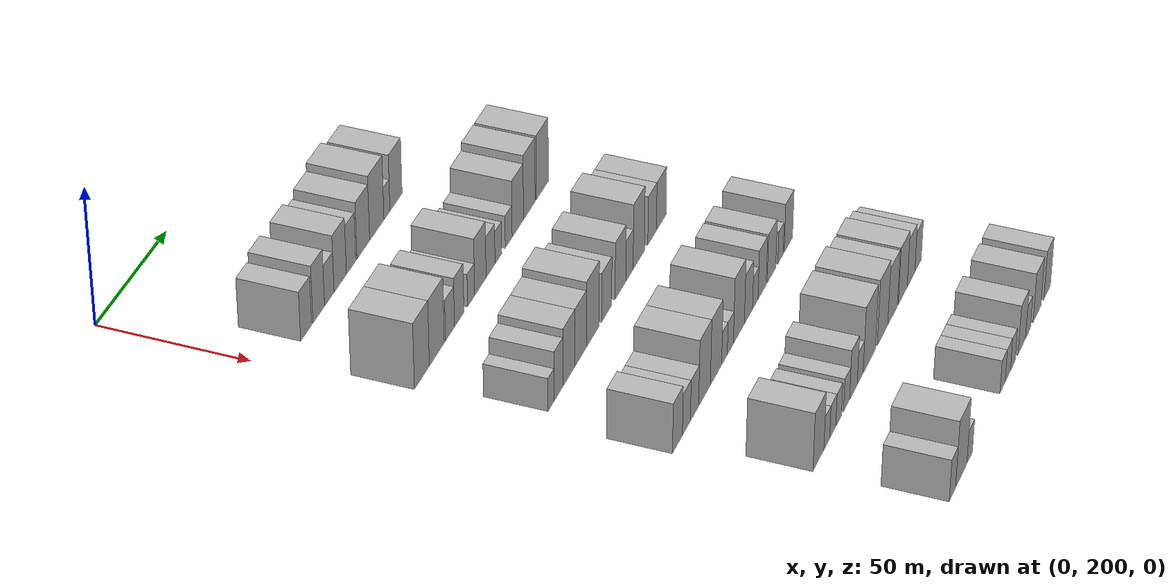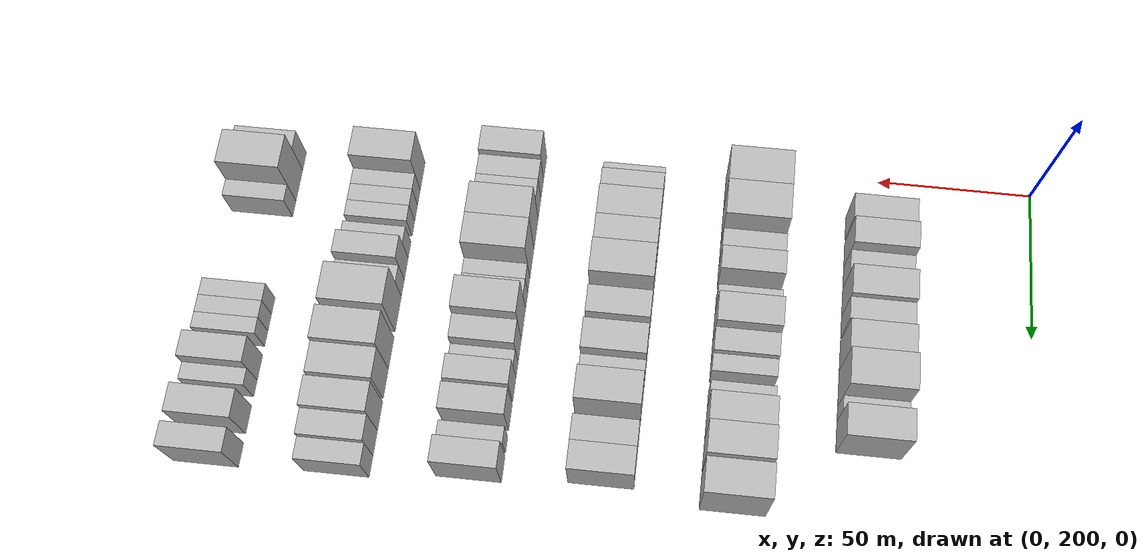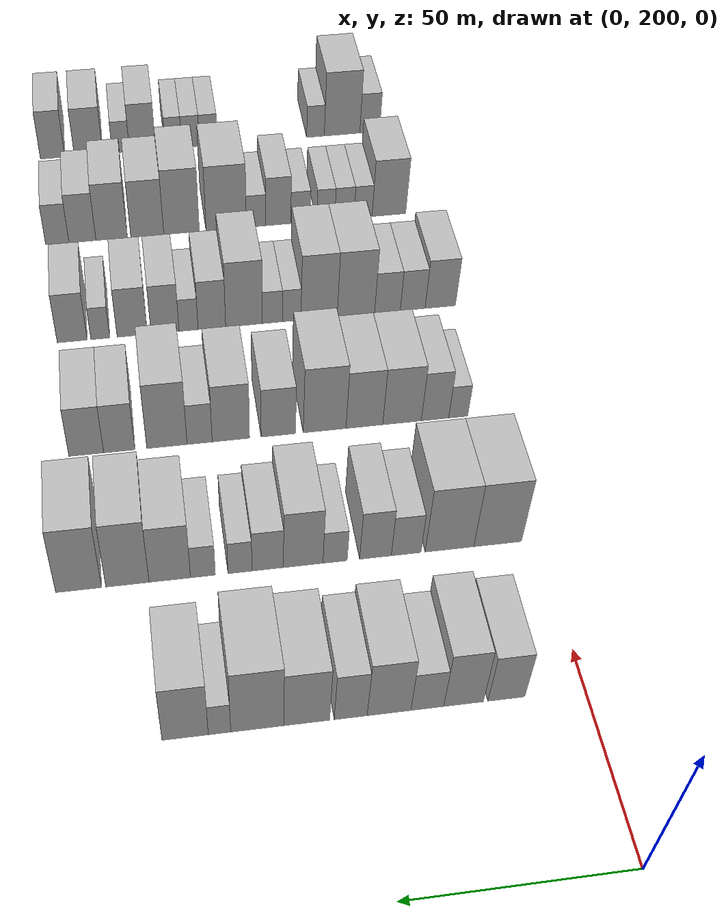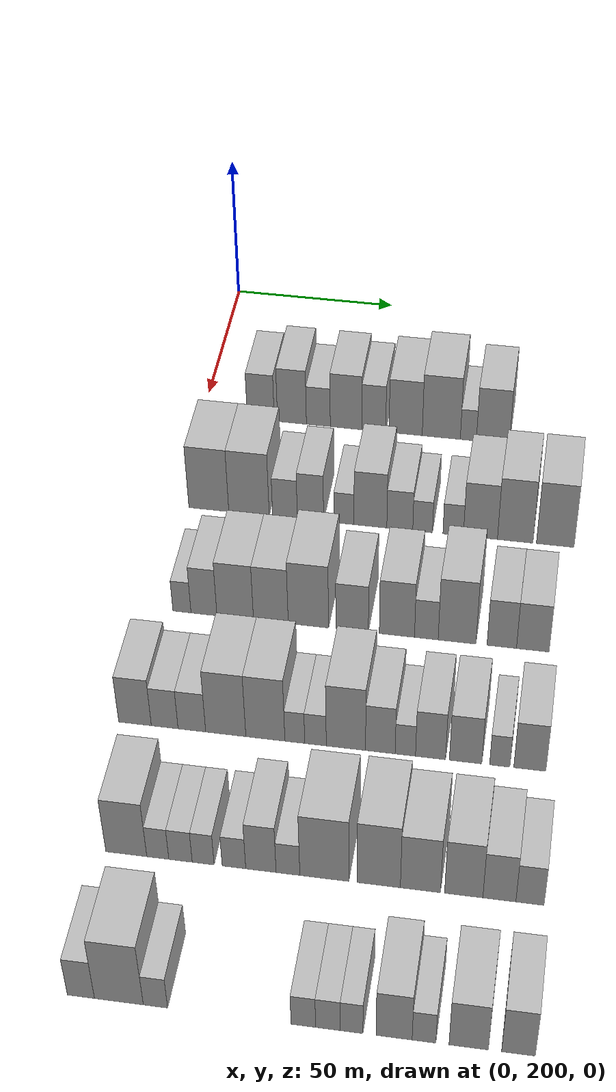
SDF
<sdf version="1.6">
 <world name="default">
  <model name="building_92">
   <static>1</static>
   <pose>50.0000 217.8585 0 0.000000 0.000000 0.000000</pose>
   <link name="link">
    <pose>0 0 9.00 0 0 0</pose>
    <collision name="collision"><geometry><box><size>20.0000 8.2677 18.0000</size></box></geometry></collision>
    <visual name="visual">
     <cast_shadows>0</cast_shadows>
     <geometry><box><size>20.0000 8.2677 18.0000</size></box></geometry>
     <material>
      <script>
       <uri>model://HANNAS_wall/materials/scripts</uri>
       <uri>model://HANNAS_wall/materials/textures</uri>
       <name>vrc/HANNAS_wall</name>
      </script>
     </material>
    </visual>
   </link>
  </model>
  <model name="building_93">
   <static>1</static>
   <pose>50.0000 227.4027 0 0.000000 0.000000 0.000000</pose>
   <link name="link">
    <pose>0 0 10.50 0 0 0</pose>
    <collision name="collision"><geometry><box><size>20.0000 8.8206 21.0000</size></box></geometry></collision>
    <visual name="visual">
     <cast_shadows>0</cast_shadows>
     <geometry><box><size>20.0000 8.8206 21.0000</size></box></geometry>
     <material>
      <script>
       <uri>model://HANNAS_wall/materials/scripts</uri>
       <uri>model://HANNAS_wall/materials/textures</uri>
       <name>vrc/HANNAS_wall</name>
      </script>
     </material>
    </visual>
   </link>
  </model>
  <model name="building_94">
   <static>1</static>
   <pose>50.0000 235.4547 0 0.000000 0.000000 0.000000</pose>
   <link name="link">
    <pose>0 0 7.50 0 0 0</pose>
    <collision name="collision"><geometry><box><size>20.0000 7.2835 15.0000</size></box></geometry></collision>
    <visual name="visual">
     <cast_shadows>0</cast_shadows>
     <geometry><box><size>20.0000 7.2835 15.0000</size></box></geometry>
     <material>
      <script>
       <uri>model://HANNAS_wall/materials/scripts</uri>
       <uri>model://HANNAS_wall/materials/textures</uri>
       <name>vrc/HANNAS_wall</name>
      </script>
     </material>
    </visual>
   </link>
  </model>
  <model name="building_95">
   <static>1</static>
   <pose>50.0000 243.9097 0 0.000000 0.000000 0.000000</pose>
   <link name="link">
    <pose>0 0 10.50 0 0 0</pose>
    <collision name="collision"><geometry><box><size>20.0000 9.6265 21.0000</size></box></geometry></collision>
    <visual name="visual">
     <cast_shadows>0</cast_shadows>
     <geometry><box><size>20.0000 9.6265 21.0000</size></box></geometry>
     <material>
      <script>
       <uri>model://HANNAS_wall/materials/scripts</uri>
       <uri>model://HANNAS_wall/materials/textures</uri>
       <name>vrc/HANNAS_wall</name>
      </script>
     </material>
    </visual>
   </link>
  </model>
  <model name="building_96">
   <static>1</static>
   <pose>50.0000 252.3314 0 0.000000 0.000000 0.000000</pose>
   <link name="link">
    <pose>0 0 9.00 0 0 0</pose>
    <collision name="collision"><geometry><box><size>20.0000 7.2169 18.0000</size></box></geometry></collision>
    <visual name="visual">
     <cast_shadows>0</cast_shadows>
     <geometry><box><size>20.0000 7.2169 18.0000</size></box></geometry>
     <material>
      <script>
       <uri>model://HANNAS_wall/materials/scripts</uri>
       <uri>model://HANNAS_wall/materials/textures</uri>
       <name>vrc/HANNAS_wall</name>
      </script>
     </material>
    </visual>
   </link>
  </model>
  <model name="building_97">
   <static>1</static>
   <pose>50.0000 261.9530 0 0.000000 0.000000 0.000000</pose>
   <link name="link">
    <pose>0 0 10.50 0 0 0</pose>
    <collision name="collision"><geometry><box><size>20.0000 10.0264 21.0000</size></box></geometry></collision>
    <visual name="visual">
     <cast_shadows>0</cast_shadows>
     <geometry><box><size>20.0000 10.0264 21.0000</size></box></geometry>
     <material>
      <script>
       <uri>model://HANNAS_wall/materials/scripts</uri>
       <uri>model://HANNAS_wall/materials/textures</uri>
       <name>vrc/HANNAS_wall</name>
      </script>
     </material>
    </visual>
   </link>
  </model>
  <model name="building_98">
   <static>1</static>
   <pose>50.0000 272.6972 0 0.000000 0.000000 0.000000</pose>
   <link name="link">
    <pose>0 0 12.00 0 0 0</pose>
    <collision name="collision"><geometry><box><size>20.0000 11.4619 24.0000</size></box></geometry></collision>
    <visual name="visual">
     <cast_shadows>0</cast_shadows>
     <geometry><box><size>20.0000 11.4619 24.0000</size></box></geometry>
     <material>
      <script>
       <uri>model://HANNAS_wall/materials/scripts</uri>
       <uri>model://HANNAS_wall/materials/textures</uri>
       <name>vrc/HANNAS_wall</name>
      </script>
     </material>
    </visual>
   </link>
  </model>
  <model name="building_99">
   <static>1</static>
   <pose>50.0000 280.8445 0 0.000000 0.000000 0.000000</pose>
   <link name="link">
    <pose>0 0 6.00 0 0 0</pose>
    <collision name="collision"><geometry><box><size>20.0000 4.8327 12.0000</size></box></geometry></collision>
    <visual name="visual">
     <cast_shadows>0</cast_shadows>
     <geometry><box><size>20.0000 4.8327 12.0000</size></box></geometry>
     <material>
      <script>
       <uri>model://HANNAS_wall/materials/scripts</uri>
       <uri>model://HANNAS_wall/materials/textures</uri>
       <name>vrc/HANNAS_wall</name>
      </script>
     </material>
    </visual>
   </link>
  </model>
  <model name="building_100">
   <static>1</static>
   <pose>50.0000 288.2170 0 0.000000 0.000000 0.000000</pose>
   <link name="link">
    <pose>0 0 10.50 0 0 0</pose>
    <collision name="collision"><geometry><box><size>20.0000 9.9124 21.0000</size></box></geometry></collision>
    <visual name="visual">
     <cast_shadows>0</cast_shadows>
     <geometry><box><size>20.0000 9.9124 21.0000</size></box></geometry>
     <material>
      <script>
       <uri>model://HANNAS_wall/materials/scripts</uri>
       <uri>model://HANNAS_wall/materials/textures</uri>
       <name>vrc/HANNAS_wall</name>
      </script>
     </material>
    </visual>
   </link>
  </model>
  <model name="building_221">
   <static>1</static>
   <pose>90.0000 209.8350 0 0.000000 0.000000 0.000000</pose>
   <link name="link">
    <pose>0 0 12.00 0 0 0</pose>
    <collision name="collision"><geometry><box><size>20.0000 11.6819 24.0000</size></box></geometry></collision>
    <visual name="visual">
     <cast_shadows>0</cast_shadows>
     <geometry><box><size>20.0000 11.6819 24.0000</size></box></geometry>
     <material>
      <script>
       <uri>model://HANNAS_wall/materials/scripts</uri>
       <uri>model://HANNAS_wall/materials/textures</uri>
       <name>vrc/HANNAS_wall</name>
      </script>
     </material>
    </visual>
   </link>
  </model>
  <model name="building_222">
   <static>1</static>
   <pose>90.0000 221.5888 0 0.000000 0.000000 0.000000</pose>
   <link name="link">
    <pose>0 0 12.00 0 0 0</pose>
    <collision name="collision"><geometry><box><size>20.0000 11.8256 24.0000</size></box></geometry></collision>
    <visual name="visual">
     <cast_shadows>0</cast_shadows>
     <geometry><box><size>20.0000 11.8256 24.0000</size></box></geometry>
     <material>
      <script>
       <uri>model://HANNAS_wall/materials/scripts</uri>
       <uri>model://HANNAS_wall/materials/textures</uri>
       <name>vrc/HANNAS_wall</name>
      </script>
     </material>
    </visual>
   </link>
  </model>
  <model name="building_223">
   <static>1</static>
   <pose>90.0000 232.0956 0 0.000000 0.000000 0.000000</pose>
   <link name="link">
    <pose>0 0 7.50 0 0 0</pose>
    <collision name="collision"><geometry><box><size>20.0000 7.1879 15.0000</size></box></geometry></collision>
    <visual name="visual">
     <cast_shadows>0</cast_shadows>
     <geometry><box><size>20.0000 7.1879 15.0000</size></box></geometry>
     <material>
      <script>
       <uri>model://HANNAS_wall/materials/scripts</uri>
       <uri>model://HANNAS_wall/materials/textures</uri>
       <name>vrc/HANNAS_wall</name>
      </script>
     </material>
    </visual>
   </link>
  </model>
  <model name="building_224">
   <static>1</static>
   <pose>90.0000 239.5042 0 0.000000 0.000000 0.000000</pose>
   <link name="link">
    <pose>0 0 9.00 0 0 0</pose>
    <collision name="collision"><geometry><box><size>20.0000 7.6293 18.0000</size></box></geometry></collision>
    <visual name="visual">
     <cast_shadows>0</cast_shadows>
     <geometry><box><size>20.0000 7.6293 18.0000</size></box></geometry>
     <material>
      <script>
       <uri>model://HANNAS_wall/materials/scripts</uri>
       <uri>model://HANNAS_wall/materials/textures</uri>
       <name>vrc/HANNAS_wall</name>
      </script>
     </material>
    </visual>
   </link>
  </model>
  <model name="building_225">
   <static>1</static>
   <pose>90.0000 249.2200 0 0.000000 0.000000 0.000000</pose>
   <link name="link">
    <pose>0 0 6.00 0 0 0</pose>
    <collision name="collision"><geometry><box><size>20.0000 5.8024 12.0000</size></box></geometry></collision>
    <visual name="visual">
     <cast_shadows>0</cast_shadows>
     <geometry><box><size>20.0000 5.8024 12.0000</size></box></geometry>
     <material>
      <script>
       <uri>model://HANNAS_wall/materials/scripts</uri>
       <uri>model://HANNAS_wall/materials/textures</uri>
       <name>vrc/HANNAS_wall</name>
      </script>
     </material>
    </visual>
   </link>
  </model>
  <model name="building_226">
   <static>1</static>
   <pose>90.0000 256.8421 0 0.000000 0.000000 0.000000</pose>
   <link name="link">
    <pose>0 0 10.50 0 0 0</pose>
    <collision name="collision"><geometry><box><size>20.0000 9.4418 21.0000</size></box></geometry></collision>
    <visual name="visual">
     <cast_shadows>0</cast_shadows>
     <geometry><box><size>20.0000 9.4418 21.0000</size></box></geometry>
     <material>
      <script>
       <uri>model://HANNAS_wall/materials/scripts</uri>
       <uri>model://HANNAS_wall/materials/textures</uri>
       <name>vrc/HANNAS_wall</name>
      </script>
     </material>
    </visual>
   </link>
  </model>
  <model name="building_227">
   <static>1</static>
   <pose>90.0000 265.2929 0 0.000000 0.000000 0.000000</pose>
   <link name="link">
    <pose>0 0 7.50 0 0 0</pose>
    <collision name="collision"><geometry><box><size>20.0000 7.4597 15.0000</size></box></geometry></collision>
    <visual name="visual">
     <cast_shadows>0</cast_shadows>
     <geometry><box><size>20.0000 7.4597 15.0000</size></box></geometry>
     <material>
      <script>
       <uri>model://HANNAS_wall/materials/scripts</uri>
       <uri>model://HANNAS_wall/materials/textures</uri>
       <name>vrc/HANNAS_wall</name>
      </script>
     </material>
    </visual>
   </link>
  </model>
  <model name="building_228">
   <static>1</static>
   <pose>90.0000 271.8470 0 0.000000 0.000000 0.000000</pose>
   <link name="link">
    <pose>0 0 6.00 0 0 0</pose>
    <collision name="collision"><geometry><box><size>20.0000 5.6486 12.0000</size></box></geometry></collision>
    <visual name="visual">
     <cast_shadows>0</cast_shadows>
     <geometry><box><size>20.0000 5.6486 12.0000</size></box></geometry>
     <material>
      <script>
       <uri>model://HANNAS_wall/materials/scripts</uri>
       <uri>model://HANNAS_wall/materials/textures</uri>
       <name>vrc/HANNAS_wall</name>
      </script>
     </material>
    </visual>
   </link>
  </model>
  <model name="building_229">
   <static>1</static>
   <pose>90.0000 280.5936 0 0.000000 0.000000 0.000000</pose>
   <link name="link">
    <pose>0 0 6.00 0 0 0</pose>
    <collision name="collision"><geometry><box><size>20.0000 5.8447 12.0000</size></box></geometry></collision>
    <visual name="visual">
     <cast_shadows>0</cast_shadows>
     <geometry><box><size>20.0000 5.8447 12.0000</size></box></geometry>
     <material>
      <script>
       <uri>model://HANNAS_wall/materials/scripts</uri>
       <uri>model://HANNAS_wall/materials/textures</uri>
       <name>vrc/HANNAS_wall</name>
      </script>
     </material>
    </visual>
   </link>
  </model>
  <model name="building_230">
   <static>1</static>
   <pose>90.0000 288.3706 0 0.000000 0.000000 0.000000</pose>
   <link name="link">
    <pose>0 0 10.50 0 0 0</pose>
    <collision name="collision"><geometry><box><size>20.0000 9.7092 21.0000</size></box></geometry></collision>
    <visual name="visual">
     <cast_shadows>0</cast_shadows>
     <geometry><box><size>20.0000 9.7092 21.0000</size></box></geometry>
     <material>
      <script>
       <uri>model://HANNAS_wall/materials/scripts</uri>
       <uri>model://HANNAS_wall/materials/textures</uri>
       <name>vrc/HANNAS_wall</name>
      </script>
     </material>
    </visual>
   </link>
  </model>
  <model name="building_231">
   <static>1</static>
   <pose>90.0000 298.2600 0 0.000000 0.000000 0.000000</pose>
   <link name="link">
    <pose>0 0 12.00 0 0 0</pose>
    <collision name="collision"><geometry><box><size>20.0000 10.0698 24.0000</size></box></geometry></collision>
    <visual name="visual">
     <cast_shadows>0</cast_shadows>
     <geometry><box><size>20.0000 10.0698 24.0000</size></box></geometry>
     <material>
      <script>
       <uri>model://HANNAS_wall/materials/scripts</uri>
       <uri>model://HANNAS_wall/materials/textures</uri>
       <name>vrc/HANNAS_wall</name>
      </script>
     </material>
    </visual>
   </link>
  </model>
  <model name="building_232">
   <static>1</static>
   <pose>90.0000 309.6060 0 0.000000 0.000000 0.000000</pose>
   <link name="link">
    <pose>0 0 12.00 0 0 0</pose>
    <collision name="collision"><geometry><box><size>20.0000 10.6221 24.0000</size></box></geometry></collision>
    <visual name="visual">
     <cast_shadows>0</cast_shadows>
     <geometry><box><size>20.0000 10.6221 24.0000</size></box></geometry>
     <material>
      <script>
       <uri>model://HANNAS_wall/materials/scripts</uri>
       <uri>model://HANNAS_wall/materials/textures</uri>
       <name>vrc/HANNAS_wall</name>
      </script>
     </material>
    </visual>
   </link>
  </model>
  <model name="building_363">
   <static>1</static>
   <pose>130.0000 210.3344 0 0.000000 0.000000 0.000000</pose>
   <link name="link">
    <pose>0 0 6.00 0 0 0</pose>
    <collision name="collision"><geometry><box><size>20.0000 5.0434 12.0000</size></box></geometry></collision>
    <visual name="visual">
     <cast_shadows>0</cast_shadows>
     <geometry><box><size>20.0000 5.0434 12.0000</size></box></geometry>
     <material>
      <script>
       <uri>model://HANNAS_wall/materials/scripts</uri>
       <uri>model://HANNAS_wall/materials/textures</uri>
       <name>vrc/HANNAS_wall</name>
      </script>
     </material>
    </visual>
   </link>
  </model>
  <model name="building_364">
   <static>1</static>
   <pose>130.0000 216.4618 0 0.000000 0.000000 0.000000</pose>
   <link name="link">
    <pose>0 0 9.00 0 0 0</pose>
    <collision name="collision"><geometry><box><size>20.0000 7.2114 18.0000</size></box></geometry></collision>
    <visual name="visual">
     <cast_shadows>0</cast_shadows>
     <geometry><box><size>20.0000 7.2114 18.0000</size></box></geometry>
     <material>
      <script>
       <uri>model://HANNAS_wall/materials/scripts</uri>
       <uri>model://HANNAS_wall/materials/textures</uri>
       <name>vrc/HANNAS_wall</name>
      </script>
     </material>
    </visual>
   </link>
  </model>
  <model name="building_365">
   <static>1</static>
   <pose>130.0000 225.1356 0 0.000000 0.000000 0.000000</pose>
   <link name="link">
    <pose>0 0 10.50 0 0 0</pose>
    <collision name="collision"><geometry><box><size>20.0000 10.1361 21.0000</size></box></geometry></collision>
    <visual name="visual">
     <cast_shadows>0</cast_shadows>
     <geometry><box><size>20.0000 10.1361 21.0000</size></box></geometry>
     <material>
      <script>
       <uri>model://HANNAS_wall/materials/scripts</uri>
       <uri>model://HANNAS_wall/materials/textures</uri>
       <name>vrc/HANNAS_wall</name>
      </script>
     </material>
    </visual>
   </link>
  </model>
  <model name="building_366">
   <static>1</static>
   <pose>130.0000 235.0115 0 0.000000 0.000000 0.000000</pose>
   <link name="link">
    <pose>0 0 10.50 0 0 0</pose>
    <collision name="collision"><geometry><box><size>20.0000 9.6157 21.0000</size></box></geometry></collision>
    <visual name="visual">
     <cast_shadows>0</cast_shadows>
     <geometry><box><size>20.0000 9.6157 21.0000</size></box></geometry>
     <material>
      <script>
       <uri>model://HANNAS_wall/materials/scripts</uri>
       <uri>model://HANNAS_wall/materials/textures</uri>
       <name>vrc/HANNAS_wall</name>
      </script>
     </material>
    </visual>
   </link>
  </model>
  <model name="building_367">
   <static>1</static>
   <pose>130.0000 245.3782 0 0.000000 0.000000 0.000000</pose>
   <link name="link">
    <pose>0 0 12.00 0 0 0</pose>
    <collision name="collision"><geometry><box><size>20.0000 11.1177 24.0000</size></box></geometry></collision>
    <visual name="visual">
     <cast_shadows>0</cast_shadows>
     <geometry><box><size>20.0000 11.1177 24.0000</size></box></geometry>
     <material>
      <script>
       <uri>model://HANNAS_wall/materials/scripts</uri>
       <uri>model://HANNAS_wall/materials/textures</uri>
       <name>vrc/HANNAS_wall</name>
      </script>
     </material>
    </visual>
   </link>
  </model>
  <model name="building_368">
   <static>1</static>
   <pose>130.0000 257.3779 0 0.000000 0.000000 0.000000</pose>
   <link name="link">
    <pose>0 0 9.00 0 0 0</pose>
    <collision name="collision"><geometry><box><size>20.0000 8.8816 18.0000</size></box></geometry></collision>
    <visual name="visual">
     <cast_shadows>0</cast_shadows>
     <geometry><box><size>20.0000 8.8816 18.0000</size></box></geometry>
     <material>
      <script>
       <uri>model://HANNAS_wall/materials/scripts</uri>
       <uri>model://HANNAS_wall/materials/textures</uri>
       <name>vrc/HANNAS_wall</name>
      </script>
     </material>
    </visual>
   </link>
  </model>
  <model name="building_369">
   <static>1</static>
   <pose>130.0000 269.6115 0 0.000000 0.000000 0.000000</pose>
   <link name="link">
    <pose>0 0 10.50 0 0 0</pose>
    <collision name="collision"><geometry><box><size>20.0000 9.5856 21.0000</size></box></geometry></collision>
    <visual name="visual">
     <cast_shadows>0</cast_shadows>
     <geometry><box><size>20.0000 9.5856 21.0000</size></box></geometry>
     <material>
      <script>
       <uri>model://HANNAS_wall/materials/scripts</uri>
       <uri>model://HANNAS_wall/materials/textures</uri>
       <name>vrc/HANNAS_wall</name>
      </script>
     </material>
    </visual>
   </link>
  </model>
  <model name="building_370">
   <static>1</static>
   <pose>130.0000 277.6211 0 0.000000 0.000000 0.000000</pose>
   <link name="link">
    <pose>0 0 7.50 0 0 0</pose>
    <collision name="collision"><geometry><box><size>20.0000 6.4337 15.0000</size></box></geometry></collision>
    <visual name="visual">
     <cast_shadows>0</cast_shadows>
     <geometry><box><size>20.0000 6.4337 15.0000</size></box></geometry>
     <material>
      <script>
       <uri>model://HANNAS_wall/materials/scripts</uri>
       <uri>model://HANNAS_wall/materials/textures</uri>
       <name>vrc/HANNAS_wall</name>
      </script>
     </material>
    </visual>
   </link>
  </model>
  <model name="building_371">
   <static>1</static>
   <pose>130.0000 285.9586 0 0.000000 0.000000 0.000000</pose>
   <link name="link">
    <pose>0 0 12.00 0 0 0</pose>
    <collision name="collision"><geometry><box><size>20.0000 10.2414 24.0000</size></box></geometry></collision>
    <visual name="visual">
     <cast_shadows>0</cast_shadows>
     <geometry><box><size>20.0000 10.2414 24.0000</size></box></geometry>
     <material>
      <script>
       <uri>model://HANNAS_wall/materials/scripts</uri>
       <uri>model://HANNAS_wall/materials/textures</uri>
       <name>vrc/HANNAS_wall</name>
      </script>
     </material>
    </visual>
   </link>
  </model>
  <model name="building_372">
   <static>1</static>
   <pose>130.0000 298.0460 0 0.000000 0.000000 0.000000</pose>
   <link name="link">
    <pose>0 0 9.00 0 0 0</pose>
    <collision name="collision"><geometry><box><size>20.0000 7.9334 18.0000</size></box></geometry></collision>
    <visual name="visual">
     <cast_shadows>0</cast_shadows>
     <geometry><box><size>20.0000 7.9334 18.0000</size></box></geometry>
     <material>
      <script>
       <uri>model://HANNAS_wall/materials/scripts</uri>
       <uri>model://HANNAS_wall/materials/textures</uri>
       <name>vrc/HANNAS_wall</name>
      </script>
     </material>
    </visual>
   </link>
  </model>
  <model name="building_373">
   <static>1</static>
   <pose>130.0000 306.3938 0 0.000000 0.000000 0.000000</pose>
   <link name="link">
    <pose>0 0 9.00 0 0 0</pose>
    <collision name="collision"><geometry><box><size>20.0000 8.7620 18.0000</size></box></geometry></collision>
    <visual name="visual">
     <cast_shadows>0</cast_shadows>
     <geometry><box><size>20.0000 8.7620 18.0000</size></box></geometry>
     <material>
      <script>
       <uri>model://HANNAS_wall/materials/scripts</uri>
       <uri>model://HANNAS_wall/materials/textures</uri>
       <name>vrc/HANNAS_wall</name>
      </script>
     </material>
    </visual>
   </link>
  </model>
  <model name="building_499">
   <static>1</static>
   <pose>170.0000 206.3096 0 0.000000 0.000000 0.000000</pose>
   <link name="link">
    <pose>0 0 9.00 0 0 0</pose>
    <collision name="collision"><geometry><box><size>20.0000 8.6467 18.0000</size></box></geometry></collision>
    <visual name="visual">
     <cast_shadows>0</cast_shadows>
     <geometry><box><size>20.0000 8.6467 18.0000</size></box></geometry>
     <material>
      <script>
       <uri>model://HANNAS_wall/materials/scripts</uri>
       <uri>model://HANNAS_wall/materials/textures</uri>
       <name>vrc/HANNAS_wall</name>
      </script>
     </material>
    </visual>
   </link>
  </model>
  <model name="building_500">
   <static>1</static>
   <pose>170.0000 214.1640 0 0.000000 0.000000 0.000000</pose>
   <link name="link">
    <pose>0 0 7.50 0 0 0</pose>
    <collision name="collision"><geometry><box><size>20.0000 7.0620 15.0000</size></box></geometry></collision>
    <visual name="visual">
     <cast_shadows>0</cast_shadows>
     <geometry><box><size>20.0000 7.0620 15.0000</size></box></geometry>
     <material>
      <script>
       <uri>model://HANNAS_wall/materials/scripts</uri>
       <uri>model://HANNAS_wall/materials/textures</uri>
       <name>vrc/HANNAS_wall</name>
      </script>
     </material>
    </visual>
   </link>
  </model>
  <model name="building_501">
   <static>1</static>
   <pose>170.0000 221.3366 0 0.000000 0.000000 0.000000</pose>
   <link name="link">
    <pose>0 0 7.50 0 0 0</pose>
    <collision name="collision"><geometry><box><size>20.0000 7.2833 15.0000</size></box></geometry></collision>
    <visual name="visual">
     <cast_shadows>0</cast_shadows>
     <geometry><box><size>20.0000 7.2833 15.0000</size></box></geometry>
     <material>
      <script>
       <uri>model://HANNAS_wall/materials/scripts</uri>
       <uri>model://HANNAS_wall/materials/textures</uri>
       <name>vrc/HANNAS_wall</name>
      </script>
     </material>
    </visual>
   </link>
  </model>
  <model name="building_502">
   <static>1</static>
   <pose>170.0000 230.2449 0 0.000000 0.000000 0.000000</pose>
   <link name="link">
    <pose>0 0 12.00 0 0 0</pose>
    <collision name="collision"><geometry><box><size>20.0000 10.5332 24.0000</size></box></geometry></collision>
    <visual name="visual">
     <cast_shadows>0</cast_shadows>
     <geometry><box><size>20.0000 10.5332 24.0000</size></box></geometry>
     <material>
      <script>
       <uri>model://HANNAS_wall/materials/scripts</uri>
       <uri>model://HANNAS_wall/materials/textures</uri>
       <name>vrc/HANNAS_wall</name>
      </script>
     </material>
    </visual>
   </link>
  </model>
  <model name="building_503">
   <static>1</static>
   <pose>170.0000 240.6176 0 0.000000 0.000000 0.000000</pose>
   <link name="link">
    <pose>0 0 12.00 0 0 0</pose>
    <collision name="collision"><geometry><box><size>20.0000 10.2122 24.0000</size></box></geometry></collision>
    <visual name="visual">
     <cast_shadows>0</cast_shadows>
     <geometry><box><size>20.0000 10.2122 24.0000</size></box></geometry>
     <material>
      <script>
       <uri>model://HANNAS_wall/materials/scripts</uri>
       <uri>model://HANNAS_wall/materials/textures</uri>
       <name>vrc/HANNAS_wall</name>
      </script>
     </material>
    </visual>
   </link>
  </model>
  <model name="building_504">
   <static>1</static>
   <pose>170.0000 248.3047 0 0.000000 0.000000 0.000000</pose>
   <link name="link">
    <pose>0 0 6.00 0 0 0</pose>
    <collision name="collision"><geometry><box><size>20.0000 5.1620 12.0000</size></box></geometry></collision>
    <visual name="visual">
     <cast_shadows>0</cast_shadows>
     <geometry><box><size>20.0000 5.1620 12.0000</size></box></geometry>
     <material>
      <script>
       <uri>model://HANNAS_wall/materials/scripts</uri>
       <uri>model://HANNAS_wall/materials/textures</uri>
       <name>vrc/HANNAS_wall</name>
      </script>
     </material>
    </visual>
   </link>
  </model>
  <model name="building_505">
   <static>1</static>
   <pose>170.0000 253.6918 0 0.000000 0.000000 0.000000</pose>
   <link name="link">
    <pose>0 0 6.00 0 0 0</pose>
    <collision name="collision"><geometry><box><size>20.0000 5.6122 12.0000</size></box></geometry></collision>
    <visual name="visual">
     <cast_shadows>0</cast_shadows>
     <geometry><box><size>20.0000 5.6122 12.0000</size></box></geometry>
     <material>
      <script>
       <uri>model://HANNAS_wall/materials/scripts</uri>
       <uri>model://HANNAS_wall/materials/textures</uri>
       <name>vrc/HANNAS_wall</name>
      </script>
     </material>
    </visual>
   </link>
  </model>
  <model name="building_506">
   <static>1</static>
   <pose>170.0000 261.5835 0 0.000000 0.000000 0.000000</pose>
   <link name="link">
    <pose>0 0 12.00 0 0 0</pose>
    <collision name="collision"><geometry><box><size>20.0000 10.1713 24.0000</size></box></geometry></collision>
    <visual name="visual">
     <cast_shadows>0</cast_shadows>
     <geometry><box><size>20.0000 10.1713 24.0000</size></box></geometry>
     <material>
      <script>
       <uri>model://HANNAS_wall/materials/scripts</uri>
       <uri>model://HANNAS_wall/materials/textures</uri>
       <name>vrc/HANNAS_wall</name>
      </script>
     </material>
    </visual>
   </link>
  </model>
  <model name="building_507">
   <static>1</static>
   <pose>170.0000 270.4888 0 0.000000 0.000000 0.000000</pose>
   <link name="link">
    <pose>0 0 9.00 0 0 0</pose>
    <collision name="collision"><geometry><box><size>20.0000 7.6393 18.0000</size></box></geometry></collision>
    <visual name="visual">
     <cast_shadows>0</cast_shadows>
     <geometry><box><size>20.0000 7.6393 18.0000</size></box></geometry>
     <material>
      <script>
       <uri>model://HANNAS_wall/materials/scripts</uri>
       <uri>model://HANNAS_wall/materials/textures</uri>
       <name>vrc/HANNAS_wall</name>
      </script>
     </material>
    </visual>
   </link>
  </model>
  <model name="building_508">
   <static>1</static>
   <pose>170.0000 276.9290 0 0.000000 0.000000 0.000000</pose>
   <link name="link">
    <pose>0 0 6.00 0 0 0</pose>
    <collision name="collision"><geometry><box><size>20.0000 5.2411 12.0000</size></box></geometry></collision>
    <visual name="visual">
     <cast_shadows>0</cast_shadows>
     <geometry><box><size>20.0000 5.2411 12.0000</size></box></geometry>
     <material>
      <script>
       <uri>model://HANNAS_wall/materials/scripts</uri>
       <uri>model://HANNAS_wall/materials/textures</uri>
       <name>vrc/HANNAS_wall</name>
      </script>
     </material>
    </visual>
   </link>
  </model>
  <model name="building_509">
   <static>1</static>
   <pose>170.0000 283.4026 0 0.000000 0.000000 0.000000</pose>
   <link name="link">
    <pose>0 0 9.00 0 0 0</pose>
    <collision name="collision"><geometry><box><size>20.0000 7.7061 18.0000</size></box></geometry></collision>
    <visual name="visual">
     <cast_shadows>0</cast_shadows>
     <geometry><box><size>20.0000 7.7061 18.0000</size></box></geometry>
     <material>
      <script>
       <uri>model://HANNAS_wall/materials/scripts</uri>
       <uri>model://HANNAS_wall/materials/textures</uri>
       <name>vrc/HANNAS_wall</name>
      </script>
     </material>
    </visual>
   </link>
  </model>
  <model name="building_510">
   <static>1</static>
   <pose>170.0000 292.4004 0 0.000000 0.000000 0.000000</pose>
   <link name="link">
    <pose>0 0 9.00 0 0 0</pose>
    <collision name="collision"><geometry><box><size>20.0000 8.2895 18.0000</size></box></geometry></collision>
    <visual name="visual">
     <cast_shadows>0</cast_shadows>
     <geometry><box><size>20.0000 8.2895 18.0000</size></box></geometry>
     <material>
      <script>
       <uri>model://HANNAS_wall/materials/scripts</uri>
       <uri>model://HANNAS_wall/materials/textures</uri>
       <name>vrc/HANNAS_wall</name>
      </script>
     </material>
    </visual>
   </link>
  </model>
  <model name="building_511">
   <static>1</static>
   <pose>170.0000 301.1281 0 0.000000 0.000000 0.000000</pose>
   <link name="link">
    <pose>0 0 6.00 0 0 0</pose>
    <collision name="collision"><geometry><box><size>20.0000 5.1659 12.0000</size></box></geometry></collision>
    <visual name="visual">
     <cast_shadows>0</cast_shadows>
     <geometry><box><size>20.0000 5.1659 12.0000</size></box></geometry>
     <material>
      <script>
       <uri>model://HANNAS_wall/materials/scripts</uri>
       <uri>model://HANNAS_wall/materials/textures</uri>
       <name>vrc/HANNAS_wall</name>
      </script>
     </material>
    </visual>
   </link>
  </model>
  <model name="building_512">
   <static>1</static>
   <pose>170.0000 308.7849 0 0.000000 0.000000 0.000000</pose>
   <link name="link">
    <pose>0 0 9.00 0 0 0</pose>
    <collision name="collision"><geometry><box><size>20.0000 8.1478 18.0000</size></box></geometry></collision>
    <visual name="visual">
     <cast_shadows>0</cast_shadows>
     <geometry><box><size>20.0000 8.1478 18.0000</size></box></geometry>
     <material>
      <script>
       <uri>model://HANNAS_wall/materials/scripts</uri>
       <uri>model://HANNAS_wall/materials/textures</uri>
       <name>vrc/HANNAS_wall</name>
      </script>
     </material>
    </visual>
   </link>
  </model>
  <model name="building_644">
   <static>1</static>
   <pose>210.0000 213.2442 0 0.000000 0.000000 0.000000</pose>
   <link name="link">
    <pose>0 0 10.50 0 0 0</pose>
    <collision name="collision"><geometry><box><size>20.0000 10.2264 21.0000</size></box></geometry></collision>
    <visual name="visual">
     <cast_shadows>0</cast_shadows>
     <geometry><box><size>20.0000 10.2264 21.0000</size></box></geometry>
     <material>
      <script>
       <uri>model://HANNAS_wall/materials/scripts</uri>
       <uri>model://HANNAS_wall/materials/textures</uri>
       <name>vrc/HANNAS_wall</name>
      </script>
     </material>
    </visual>
   </link>
  </model>
  <model name="building_645">
   <static>1</static>
   <pose>210.0000 221.1032 0 0.000000 0.000000 0.000000</pose>
   <link name="link">
    <pose>0 0 6.00 0 0 0</pose>
    <collision name="collision"><geometry><box><size>20.0000 5.4916 12.0000</size></box></geometry></collision>
    <visual name="visual">
     <cast_shadows>0</cast_shadows>
     <geometry><box><size>20.0000 5.4916 12.0000</size></box></geometry>
     <material>
      <script>
       <uri>model://HANNAS_wall/materials/scripts</uri>
       <uri>model://HANNAS_wall/materials/textures</uri>
       <name>vrc/HANNAS_wall</name>
      </script>
     </material>
    </visual>
   </link>
  </model>
  <model name="building_646">
   <static>1</static>
   <pose>210.0000 226.7561 0 0.000000 0.000000 0.000000</pose>
   <link name="link">
    <pose>0 0 6.00 0 0 0</pose>
    <collision name="collision"><geometry><box><size>20.0000 5.8141 12.0000</size></box></geometry></collision>
    <visual name="visual">
     <cast_shadows>0</cast_shadows>
     <geometry><box><size>20.0000 5.8141 12.0000</size></box></geometry>
     <material>
      <script>
       <uri>model://HANNAS_wall/materials/scripts</uri>
       <uri>model://HANNAS_wall/materials/textures</uri>
       <name>vrc/HANNAS_wall</name>
      </script>
     </material>
    </visual>
   </link>
  </model>
  <model name="building_647">
   <static>1</static>
   <pose>210.0000 232.3778 0 0.000000 0.000000 0.000000</pose>
   <link name="link">
    <pose>0 0 6.00 0 0 0</pose>
    <collision name="collision"><geometry><box><size>20.0000 5.4293 12.0000</size></box></geometry></collision>
    <visual name="visual">
     <cast_shadows>0</cast_shadows>
     <geometry><box><size>20.0000 5.4293 12.0000</size></box></geometry>
     <material>
      <script>
       <uri>model://HANNAS_wall/materials/scripts</uri>
       <uri>model://HANNAS_wall/materials/textures</uri>
       <name>vrc/HANNAS_wall</name>
      </script>
     </material>
    </visual>
   </link>
  </model>
  <model name="building_648">
   <static>1</static>
   <pose>210.0000 240.0018 0 0.000000 0.000000 0.000000</pose>
   <link name="link">
    <pose>0 0 6.00 0 0 0</pose>
    <collision name="collision"><geometry><box><size>20.0000 5.8187 12.0000</size></box></geometry></collision>
    <visual name="visual">
     <cast_shadows>0</cast_shadows>
     <geometry><box><size>20.0000 5.8187 12.0000</size></box></geometry>
     <material>
      <script>
       <uri>model://HANNAS_wall/materials/scripts</uri>
       <uri>model://HANNAS_wall/materials/textures</uri>
       <name>vrc/HANNAS_wall</name>
      </script>
     </material>
    </visual>
   </link>
  </model>
  <model name="building_649">
   <static>1</static>
   <pose>210.0000 246.6503 0 0.000000 0.000000 0.000000</pose>
   <link name="link">
    <pose>0 0 9.00 0 0 0</pose>
    <collision name="collision"><geometry><box><size>20.0000 7.4784 18.0000</size></box></geometry></collision>
    <visual name="visual">
     <cast_shadows>0</cast_shadows>
     <geometry><box><size>20.0000 7.4784 18.0000</size></box></geometry>
     <material>
      <script>
       <uri>model://HANNAS_wall/materials/scripts</uri>
       <uri>model://HANNAS_wall/materials/textures</uri>
       <name>vrc/HANNAS_wall</name>
      </script>
     </material>
    </visual>
   </link>
  </model>
  <model name="building_650">
   <static>1</static>
   <pose>210.0000 253.3043 0 0.000000 0.000000 0.000000</pose>
   <link name="link">
    <pose>0 0 6.00 0 0 0</pose>
    <collision name="collision"><geometry><box><size>20.0000 5.8296 12.0000</size></box></geometry></collision>
    <visual name="visual">
     <cast_shadows>0</cast_shadows>
     <geometry><box><size>20.0000 5.8296 12.0000</size></box></geometry>
     <material>
      <script>
       <uri>model://HANNAS_wall/materials/scripts</uri>
       <uri>model://HANNAS_wall/materials/textures</uri>
       <name>vrc/HANNAS_wall</name>
      </script>
     </material>
    </visual>
   </link>
  </model>
  <model name="building_651">
   <static>1</static>
   <pose>210.0000 262.2163 0 0.000000 0.000000 0.000000</pose>
   <link name="link">
    <pose>0 0 12.00 0 0 0</pose>
    <collision name="collision"><geometry><box><size>20.0000 11.9945 24.0000</size></box></geometry></collision>
    <visual name="visual">
     <cast_shadows>0</cast_shadows>
     <geometry><box><size>20.0000 11.9945 24.0000</size></box></geometry>
     <material>
      <script>
       <uri>model://HANNAS_wall/materials/scripts</uri>
       <uri>model://HANNAS_wall/materials/textures</uri>
       <name>vrc/HANNAS_wall</name>
      </script>
     </material>
    </visual>
   </link>
  </model>
  <model name="building_652">
   <static>1</static>
   <pose>210.0000 275.4855 0 0.000000 0.000000 0.000000</pose>
   <link name="link">
    <pose>0 0 12.00 0 0 0</pose>
    <collision name="collision"><geometry><box><size>20.0000 10.5439 24.0000</size></box></geometry></collision>
    <visual name="visual">
     <cast_shadows>0</cast_shadows>
     <geometry><box><size>20.0000 10.5439 24.0000</size></box></geometry>
     <material>
      <script>
       <uri>model://HANNAS_wall/materials/scripts</uri>
       <uri>model://HANNAS_wall/materials/textures</uri>
       <name>vrc/HANNAS_wall</name>
      </script>
     </material>
    </visual>
   </link>
  </model>
  <model name="building_653">
   <static>1</static>
   <pose>210.0000 285.6100 0 0.000000 0.000000 0.000000</pose>
   <link name="link">
    <pose>0 0 10.50 0 0 0</pose>
    <collision name="collision"><geometry><box><size>20.0000 9.7050 21.0000</size></box></geometry></collision>
    <visual name="visual">
     <cast_shadows>0</cast_shadows>
     <geometry><box><size>20.0000 9.7050 21.0000</size></box></geometry>
     <material>
      <script>
       <uri>model://HANNAS_wall/materials/scripts</uri>
       <uri>model://HANNAS_wall/materials/textures</uri>
       <name>vrc/HANNAS_wall</name>
      </script>
     </material>
    </visual>
   </link>
  </model>
  <model name="building_654">
   <static>1</static>
   <pose>210.0000 296.0754 0 0.000000 0.000000 0.000000</pose>
   <link name="link">
    <pose>0 0 10.50 0 0 0</pose>
    <collision name="collision"><geometry><box><size>20.0000 9.2256 21.0000</size></box></geometry></collision>
    <visual name="visual">
     <cast_shadows>0</cast_shadows>
     <geometry><box><size>20.0000 9.2256 21.0000</size></box></geometry>
     <material>
      <script>
       <uri>model://HANNAS_wall/materials/scripts</uri>
       <uri>model://HANNAS_wall/materials/textures</uri>
       <name>vrc/HANNAS_wall</name>
      </script>
     </material>
    </visual>
   </link>
  </model>
  <model name="building_655">
   <static>1</static>
   <pose>210.0000 304.6527 0 0.000000 0.000000 0.000000</pose>
   <link name="link">
    <pose>0 0 9.00 0 0 0</pose>
    <collision name="collision"><geometry><box><size>20.0000 7.9290 18.0000</size></box></geometry></collision>
    <visual name="visual">
     <cast_shadows>0</cast_shadows>
     <geometry><box><size>20.0000 7.9290 18.0000</size></box></geometry>
     <material>
      <script>
       <uri>model://HANNAS_wall/materials/scripts</uri>
       <uri>model://HANNAS_wall/materials/textures</uri>
       <name>vrc/HANNAS_wall</name>
      </script>
     </material>
    </visual>
   </link>
  </model>
  <model name="building_656">
   <static>1</static>
   <pose>210.0000 311.9929 0 0.000000 0.000000 0.000000</pose>
   <link name="link">
    <pose>0 0 7.50 0 0 0</pose>
    <collision name="collision"><geometry><box><size>20.0000 6.7514 15.0000</size></box></geometry></collision>
    <visual name="visual">
     <cast_shadows>0</cast_shadows>
     <geometry><box><size>20.0000 6.7514 15.0000</size></box></geometry>
     <material>
      <script>
       <uri>model://HANNAS_wall/materials/scripts</uri>
       <uri>model://HANNAS_wall/materials/textures</uri>
       <name>vrc/HANNAS_wall</name>
      </script>
     </material>
    </visual>
   </link>
  </model>
  <model name="building_780">
   <static>1</static>
   <pose>250.0000 211.8039 0 0.000000 0.000000 0.000000</pose>
   <link name="link">
    <pose>0 0 7.50 0 0 0</pose>
    <collision name="collision"><geometry><box><size>20.0000 6.3951 15.0000</size></box></geometry></collision>
    <visual name="visual">
     <cast_shadows>0</cast_shadows>
     <geometry><box><size>20.0000 6.3951 15.0000</size></box></geometry>
     <material>
      <script>
       <uri>model://HANNAS_wall/materials/scripts</uri>
       <uri>model://HANNAS_wall/materials/textures</uri>
       <name>vrc/HANNAS_wall</name>
      </script>
     </material>
    </visual>
   </link>
  </model>
  <model name="building_781">
   <static>1</static>
   <pose>250.0000 220.7415 0 0.000000 0.000000 0.000000</pose>
   <link name="link">
    <pose>0 0 12.00 0 0 0</pose>
    <collision name="collision"><geometry><box><size>20.0000 11.4802 24.0000</size></box></geometry></collision>
    <visual name="visual">
     <cast_shadows>0</cast_shadows>
     <geometry><box><size>20.0000 11.4802 24.0000</size></box></geometry>
     <material>
      <script>
       <uri>model://HANNAS_wall/materials/scripts</uri>
       <uri>model://HANNAS_wall/materials/textures</uri>
       <name>vrc/HANNAS_wall</name>
      </script>
     </material>
    </visual>
   </link>
  </model>
  <model name="building_782">
   <static>1</static>
   <pose>250.0000 229.3275 0 0.000000 0.000000 0.000000</pose>
   <link name="link">
    <pose>0 0 6.00 0 0 0</pose>
    <collision name="collision"><geometry><box><size>20.0000 5.6918 12.0000</size></box></geometry></collision>
    <visual name="visual">
     <cast_shadows>0</cast_shadows>
     <geometry><box><size>20.0000 5.6918 12.0000</size></box></geometry>
     <material>
      <script>
       <uri>model://HANNAS_wall/materials/scripts</uri>
       <uri>model://HANNAS_wall/materials/textures</uri>
       <name>vrc/HANNAS_wall</name>
      </script>
     </material>
    </visual>
   </link>
  </model>
  <model name="building_783">
   <static>1</static>
   <pose>250.0000 263.6373 0 0.000000 0.000000 0.000000</pose>
   <link name="link">
    <pose>0 0 6.00 0 0 0</pose>
    <collision name="collision"><geometry><box><size>20.0000 5.6426 12.0000</size></box></geometry></collision>
    <visual name="visual">
     <cast_shadows>0</cast_shadows>
     <geometry><box><size>20.0000 5.6426 12.0000</size></box></geometry>
     <material>
      <script>
       <uri>model://HANNAS_wall/materials/scripts</uri>
       <uri>model://HANNAS_wall/materials/textures</uri>
       <name>vrc/HANNAS_wall</name>
      </script>
     </material>
    </visual>
   </link>
  </model>
  <model name="building_784">
   <static>1</static>
   <pose>250.0000 269.2895 0 0.000000 0.000000 0.000000</pose>
   <link name="link">
    <pose>0 0 6.00 0 0 0</pose>
    <collision name="collision"><geometry><box><size>20.0000 5.6617 12.0000</size></box></geometry></collision>
    <visual name="visual">
     <cast_shadows>0</cast_shadows>
     <geometry><box><size>20.0000 5.6617 12.0000</size></box></geometry>
     <material>
      <script>
       <uri>model://HANNAS_wall/materials/scripts</uri>
       <uri>model://HANNAS_wall/materials/textures</uri>
       <name>vrc/HANNAS_wall</name>
      </script>
     </material>
    </visual>
   </link>
  </model>
  <model name="building_785">
   <static>1</static>
   <pose>250.0000 274.7117 0 0.000000 0.000000 0.000000</pose>
   <link name="link">
    <pose>0 0 6.00 0 0 0</pose>
    <collision name="collision"><geometry><box><size>20.0000 5.1826 12.0000</size></box></geometry></collision>
    <visual name="visual">
     <cast_shadows>0</cast_shadows>
     <geometry><box><size>20.0000 5.1826 12.0000</size></box></geometry>
     <material>
      <script>
       <uri>model://HANNAS_wall/materials/scripts</uri>
       <uri>model://HANNAS_wall/materials/textures</uri>
       <name>vrc/HANNAS_wall</name>
      </script>
     </material>
    </visual>
   </link>
  </model>
  <model name="building_786">
   <static>1</static>
   <pose>250.0000 284.4131 0 0.000000 0.000000 0.000000</pose>
   <link name="link">
    <pose>0 0 9.00 0 0 0</pose>
    <collision name="collision"><geometry><box><size>20.0000 8.2203 18.0000</size></box></geometry></collision>
    <visual name="visual">
     <cast_shadows>0</cast_shadows>
     <geometry><box><size>20.0000 8.2203 18.0000</size></box></geometry>
     <material>
      <script>
       <uri>model://HANNAS_wall/materials/scripts</uri>
       <uri>model://HANNAS_wall/materials/textures</uri>
       <name>vrc/HANNAS_wall</name>
      </script>
     </material>
    </visual>
   </link>
  </model>
  <model name="building_787">
   <static>1</static>
   <pose>250.0000 291.2175 0 0.000000 0.000000 0.000000</pose>
   <link name="link">
    <pose>0 0 6.00 0 0 0</pose>
    <collision name="collision"><geometry><box><size>20.0000 5.3886 12.0000</size></box></geometry></collision>
    <visual name="visual">
     <cast_shadows>0</cast_shadows>
     <geometry><box><size>20.0000 5.3886 12.0000</size></box></geometry>
     <material>
      <script>
       <uri>model://HANNAS_wall/materials/scripts</uri>
       <uri>model://HANNAS_wall/materials/textures</uri>
       <name>vrc/HANNAS_wall</name>
      </script>
     </material>
    </visual>
   </link>
  </model>
  <model name="building_788">
   <static>1</static>
   <pose>250.0000 301.3556 0 0.000000 0.000000 0.000000</pose>
   <link name="link">
    <pose>0 0 9.00 0 0 0</pose>
    <collision name="collision"><geometry><box><size>20.0000 8.8875 18.0000</size></box></geometry></collision>
    <visual name="visual">
     <cast_shadows>0</cast_shadows>
     <geometry><box><size>20.0000 8.8875 18.0000</size></box></geometry>
     <material>
      <script>
       <uri>model://HANNAS_wall/materials/scripts</uri>
       <uri>model://HANNAS_wall/materials/textures</uri>
       <name>vrc/HANNAS_wall</name>
      </script>
     </material>
    </visual>
   </link>
  </model>
  <model name="building_789">
   <static>1</static>
   <pose>250.0000 312.5865 0 0.000000 0.000000 0.000000</pose>
   <link name="link">
    <pose>0 0 9.00 0 0 0</pose>
    <collision name="collision"><geometry><box><size>20.0000 7.5742 18.0000</size></box></geometry></collision>
    <visual name="visual">
     <cast_shadows>0</cast_shadows>
     <geometry><box><size>20.0000 7.5742 18.0000</size></box></geometry>
     <material>
      <script>
       <uri>model://HANNAS_wall/materials/scripts</uri>
       <uri>model://HANNAS_wall/materials/textures</uri>
       <name>vrc/HANNAS_wall</name>
      </script>
     </material>
    </visual>
   </link>
  </model>
 </world>
</sdf>
